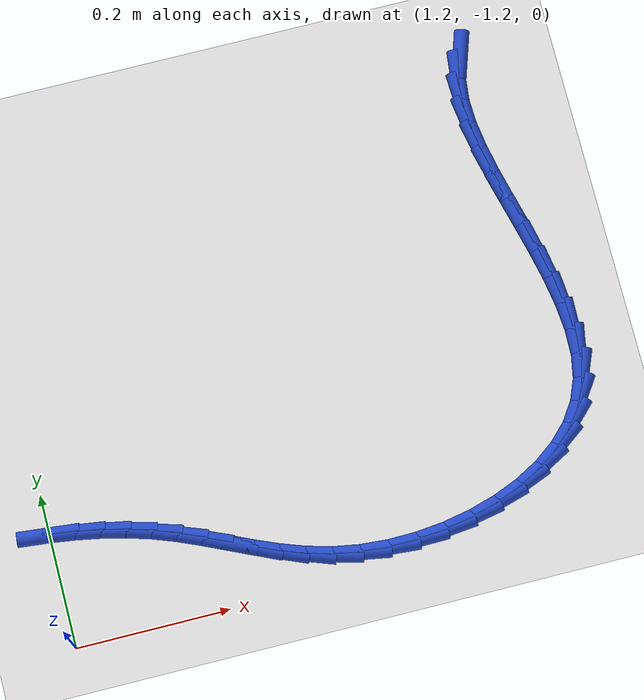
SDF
<sdf version="1.6">
 <world name="default">
  <model name="ground_plane">
   <static>1</static>
   <link name="link">
    <collision name="collision">
     <geometry><plane><normal>0 0 1</normal><size>100 100</size></plane></geometry>
     <surface><friction><ode><mu>100</mu><mu2>50</mu2></ode></friction></surface>
    </collision>
    <visual name="visual">
     <cast_shadows>0</cast_shadows>
     <geometry><plane><normal>0 0 1</normal><size>100 100</size></plane></geometry>
     <material>
      <script><uri>file://media/materials/scripts/gazebo.material</uri><name>Gazebo/WhiteGlow</name></script>
     </material>
    </visual>
   </link>
  </model>
  <model name="line">
   <link name="link_129">
    <pose>1.8632933711608464 -0.575412648130914 0.01 0 1.57 1.2504238579295757</pose>
    <collision name="collision">
     <geometry><cylinder><radius>0.01</radius><length>0.08</length></cylinder></geometry>
    </collision>
    <visual name="visual">
     <material>
      <script><name>Gazebo/Blue</name><uri>file://media/materials/scripts/gazebo.material</uri></script>
     </material>
     <geometry><cylinder><radius>0.01</radius><length>0.08</length></cylinder></geometry>
    </visual>
   </link>
   <link name="link_130">
    <pose>1.8546679496541427 -0.6014082718740382 0.01 0 1.57 1.4628177423279325</pose>
    <collision name="collision">
     <geometry><cylinder><radius>0.01</radius><length>0.08</length></cylinder></geometry>
    </collision>
    <visual name="visual">
     <material>
      <script><name>Gazebo/Blue</name><uri>file://media/materials/scripts/gazebo.material</uri></script>
     </material>
     <geometry><cylinder><radius>0.01</radius><length>0.08</length></cylinder></geometry>
    </visual>
   </link>
   <link name="link_131">
    <pose>1.8514949266762994 -0.6306796461570738 0.01 0 1.57 -1.52931622320781</pose>
    <collision name="collision">
     <geometry><cylinder><radius>0.01</radius><length>0.08</length></cylinder></geometry>
    </collision>
    <visual name="visual">
     <material>
      <script><name>Gazebo/Blue</name><uri>file://media/materials/scripts/gazebo.material</uri></script>
     </material>
     <geometry><cylinder><radius>0.01</radius><length>0.08</length></cylinder></geometry>
    </visual>
   </link>
   <link name="link_132">
    <pose>1.852824706941173 -0.6627195252698033 0.01 0 1.57 -1.429389986927651</pose>
    <collision name="collision">
     <geometry><cylinder><radius>0.01</radius><length>0.08</length></cylinder></geometry>
    </collision>
    <visual name="visual">
     <material>
      <script><name>Gazebo/Blue</name><uri>file://media/materials/scripts/gazebo.material</uri></script>
     </material>
     <geometry><cylinder><radius>0.01</radius><length>0.08</length></cylinder></geometry>
    </visual>
   </link>
   <link name="link_133">
    <pose>1.8577076951626175 -0.6970206635020103 0.01 0 1.57 -1.366062618379595</pose>
    <collision name="collision">
     <geometry><cylinder><radius>0.01</radius><length>0.08</length></cylinder></geometry>
    </collision>
    <visual name="visual">
     <material>
      <script><name>Gazebo/Blue</name><uri>file://media/materials/scripts/gazebo.material</uri></script>
     </material>
     <geometry><cylinder><radius>0.01</radius><length>0.08</length></cylinder></geometry>
    </visual>
   </link>
   <link name="link_134">
    <pose>1.8651942960544887 -0.7330758151434794 0.01 0 1.57 -1.3304873751927069</pose>
    <collision name="collision">
     <geometry><cylinder><radius>0.01</radius><length>0.08</length></cylinder></geometry>
    </collision>
    <visual name="visual">
     <material>
      <script><name>Gazebo/Blue</name><uri>file://media/materials/scripts/gazebo.material</uri></script>
     </material>
     <geometry><cylinder><radius>0.01</radius><length>0.08</length></cylinder></geometry>
    </visual>
   </link>
   <link name="link_135">
    <pose>1.8743349143306423 -0.7703777344839946 0.01 0 1.57 -1.3175546981564903</pose>
    <collision name="collision">
     <geometry><cylinder><radius>0.01</radius><length>0.08</length></cylinder></geometry>
    </collision>
    <visual name="visual">
     <material>
      <script><name>Gazebo/Blue</name><uri>file://media/materials/scripts/gazebo.material</uri></script>
     </material>
     <geometry><cylinder><radius>0.01</radius><length>0.08</length></cylinder></geometry>
    </visual>
   </link>
   <link name="link_136">
    <pose>1.884179954704933 -0.8084191758133379 0.01 0 1.57 -1.325044736934361</pose>
    <collision name="collision">
     <geometry><cylinder><radius>0.01</radius><length>0.08</length></cylinder></geometry>
    </collision>
    <visual name="visual">
     <material>
      <script><name>Gazebo/Blue</name><uri>file://media/materials/scripts/gazebo.material</uri></script>
     </material>
     <geometry><cylinder><radius>0.01</radius><length>0.08</length></cylinder></geometry>
    </visual>
   </link>
   <link name="link_137">
    <pose>1.8937798218912156 -0.8466928934212941 0.01 0 1.57 -1.3531073387764245</pose>
    <collision name="collision">
     <geometry><cylinder><radius>0.01</radius><length>0.08</length></cylinder></geometry>
    </collision>
    <visual name="visual">
     <material>
      <script><name>Gazebo/Blue</name><uri>file://media/materials/scripts/gazebo.material</uri></script>
     </material>
     <geometry><cylinder><radius>0.01</radius><length>0.08</length></cylinder></geometry>
    </visual>
   </link>
   <link name="link_138">
    <pose>1.902184920603346 -0.8846916415976465 0.01 0 1.57 -1.4041322437718786</pose>
    <collision name="collision">
     <geometry><cylinder><radius>0.01</radius><length>0.08</length></cylinder></geometry>
    </collision>
    <visual name="visual">
     <material>
      <script><name>Gazebo/Blue</name><uri>file://media/materials/scripts/gazebo.material</uri></script>
     </material>
     <geometry><cylinder><radius>0.01</radius><length>0.08</length></cylinder></geometry>
    </visual>
   </link>
   <link name="link_139">
    <pose>1.9084456555551792 -0.9219081746321797 0.01 0 1.57 -1.4828789889233411</pose>
    <collision name="collision">
     <geometry><cylinder><radius>0.01</radius><length>0.08</length></cylinder></geometry>
    </collision>
    <visual name="visual">
     <material>
      <script><name>Gazebo/Blue</name><uri>file://media/materials/scripts/gazebo.material</uri></script>
     </material>
     <geometry><cylinder><radius>0.01</radius><length>0.08</length></cylinder></geometry>
    </visual>
   </link>
   <link name="link_140">
    <pose>1.9116124314605707 -0.9578352468146758 0.01 0 1.57 1.545112874044818</pose>
    <collision name="collision">
     <geometry><cylinder><radius>0.01</radius><length>0.08</length></cylinder></geometry>
    </collision>
    <visual name="visual">
     <material>
      <script><name>Gazebo/Blue</name><uri>file://media/materials/scripts/gazebo.material</uri></script>
     </material>
     <geometry><cylinder><radius>0.01</radius><length>0.08</length></cylinder></geometry>
    </visual>
   </link>
   <link name="link_141">
    <pose>1.9107356530333757 -0.9919656124349197 0.01 0 1.57 1.388410204417434</pose>
    <collision name="collision">
     <geometry><cylinder><radius>0.01</radius><length>0.08</length></cylinder></geometry>
    </collision>
    <visual name="visual">
     <material>
      <script><name>Gazebo/Blue</name><uri>file://media/materials/scripts/gazebo.material</uri></script>
     </material>
     <geometry><cylinder><radius>0.01</radius><length>0.08</length></cylinder></geometry>
    </visual>
   </link>
   <link name="link_142">
    <pose>1.9048657249874492 -1.0237920257826942 0.01 0 1.57 1.1860587648093892</pose>
    <collision name="collision">
     <geometry><cylinder><radius>0.01</radius><length>0.08</length></cylinder></geometry>
    </collision>
    <visual name="visual">
     <material>
      <script><name>Gazebo/Blue</name><uri>file://media/materials/scripts/gazebo.material</uri></script>
     </material>
     <geometry><cylinder><radius>0.01</radius><length>0.08</length></cylinder></geometry>
    </visual>
   </link>
   <link name="link_143">
    <pose>1.8931104798734975 -1.052823306038154 0.01 0 1.57 0.9749716603649194</pose>
    <collision name="collision">
     <geometry><cylinder><radius>0.01</radius><length>0.08</length></cylinder></geometry>
    </collision>
    <visual name="visual">
     <material>
      <script><name>Gazebo/Blue</name><uri>file://media/materials/scripts/gazebo.material</uri></script>
     </material>
     <geometry><cylinder><radius>0.01</radius><length>0.08</length></cylinder></geometry>
    </visual>
   </link>
   <link name="link_144">
    <pose>1.8754830489135546 -1.0788215210619505 0.01 0 1.57 0.788980446471819</pose>
    <collision name="collision">
     <geometry><cylinder><radius>0.01</radius><length>0.08</length></cylinder></geometry>
    </collision>
    <visual name="visual">
     <material>
      <script><name>Gazebo/Blue</name><uri>file://media/materials/scripts/gazebo.material</uri></script>
     </material>
     <geometry><cylinder><radius>0.01</radius><length>0.08</length></cylinder></geometry>
    </visual>
   </link>
   <link name="link_145">
    <pose>1.8527177707742726 -1.1017504896280013 0.01 0 1.57 0.6308308227612005</pose>
    <collision name="collision">
     <geometry><cylinder><radius>0.01</radius><length>0.08</length></cylinder></geometry>
    </collision>
    <visual name="visual">
     <material>
      <script><name>Gazebo/Blue</name><uri>file://media/materials/scripts/gazebo.material</uri></script>
     </material>
     <geometry><cylinder><radius>0.01</radius><length>0.08</length></cylinder></geometry>
    </visual>
   </link>
   <link name="link_146">
    <pose>1.8255689961812471 -1.1215796286931015 0.01 0 1.57 0.49710961691294836</pose>
    <collision name="collision">
     <geometry><cylinder><radius>0.01</radius><length>0.08</length></cylinder></geometry>
    </collision>
    <visual name="visual">
     <material>
      <script><name>Gazebo/Blue</name><uri>file://media/materials/scripts/gazebo.material</uri></script>
     </material>
     <geometry><cylinder><radius>0.01</radius><length>0.08</length></cylinder></geometry>
    </visual>
   </link>
   <link name="link_147">
    <pose>1.7947910758600731 -1.1382783552140459 0.01 0 1.57 0.3824682150111354</pose>
    <collision name="collision">
     <geometry><cylinder><radius>0.01</radius><length>0.08</length></cylinder></geometry>
    </collision>
    <visual name="visual">
     <material>
      <script><name>Gazebo/Blue</name><uri>file://media/materials/scripts/gazebo.material</uri></script>
     </material>
     <geometry><cylinder><radius>0.01</radius><length>0.08</length></cylinder></geometry>
    </visual>
   </link>
   <link name="link_148">
    <pose>1.761138360536345 -1.1518160861476296 0.01 0 1.57 0.2815336300978611</pose>
    <collision name="collision">
     <geometry><cylinder><radius>0.01</radius><length>0.08</length></cylinder></geometry>
    </collision>
    <visual name="visual">
     <material>
      <script><name>Gazebo/Blue</name><uri>file://media/materials/scripts/gazebo.material</uri></script>
     </material>
     <geometry><cylinder><radius>0.01</radius><length>0.08</length></cylinder></geometry>
    </visual>
   </link>
   <link name="link_149">
    <pose>1.7253652009356613 -1.162162238450648 0.01 0 1.57 0.18951636399218014</pose>
    <collision name="collision">
     <geometry><cylinder><radius>0.01</radius><length>0.08</length></cylinder></geometry>
    </collision>
    <visual name="visual">
     <material>
      <script><name>Gazebo/Blue</name><uri>file://media/materials/scripts/gazebo.material</uri></script>
     </material>
     <geometry><cylinder><radius>0.01</radius><length>0.08</length></cylinder></geometry>
    </visual>
   </link>
   <link name="link_150">
    <pose>1.6882259477836148 -1.169286229079895 0.01 0 1.57 0.10218965010119697</pose>
    <collision name="collision">
     <geometry><cylinder><radius>0.01</radius><length>0.08</length></cylinder></geometry>
    </collision>
    <visual name="visual">
     <material>
      <script><name>Gazebo/Blue</name><uri>file://media/materials/scripts/gazebo.material</uri></script>
     </material>
     <geometry><cylinder><radius>0.01</radius><length>0.08</length></cylinder></geometry>
    </visual>
   </link>
   <link name="link_151">
    <pose>1.6504749518058008 -1.173157474992166 0.01 0 1.57 0.015631360382414385</pose>
    <collision name="collision">
     <geometry><cylinder><radius>0.01</radius><length>0.08</length></cylinder></geometry>
    </collision>
    <visual name="visual">
     <material>
      <script><name>Gazebo/Blue</name><uri>file://media/materials/scripts/gazebo.material</uri></script>
     </material>
     <geometry><cylinder><radius>0.01</radius><length>0.08</length></cylinder></geometry>
    </visual>
   </link>
   <link name="link_152">
    <pose>1.6128665637278152 -1.1737453931442563 0.01 0 1.57 -0.07411857990275482</pose>
    <collision name="collision">
     <geometry><cylinder><radius>0.01</radius><length>0.08</length></cylinder></geometry>
    </collision>
    <visual name="visual">
     <material>
      <script><name>Gazebo/Blue</name><uri>file://media/materials/scripts/gazebo.material</uri></script>
     </material>
     <geometry><cylinder><radius>0.01</radius><length>0.08</length></cylinder></geometry>
    </visual>
   </link>
   <link name="link_153">
    <pose>1.5761551342752542 -1.1710194004929604 0.01 0 1.57 -0.17117895376255152</pose>
    <collision name="collision">
     <geometry><cylinder><radius>0.01</radius><length>0.08</length></cylinder></geometry>
    </collision>
    <visual name="visual">
     <material>
      <script><name>Gazebo/Blue</name><uri>file://media/materials/scripts/gazebo.material</uri></script>
     </material>
     <geometry><cylinder><radius>0.01</radius><length>0.08</length></cylinder></geometry>
    </visual>
   </link>
   <link name="link_154">
    <pose>1.5410838725154967 -1.1649566047729982 0.01 0 1.57 -0.26766705958619086</pose>
    <collision name="collision">
     <geometry><cylinder><radius>0.01</radius><length>0.08</length></cylinder></geometry>
    </collision>
    <visual name="visual">
     <material>
      <script><name>Gazebo/Blue</name><uri>file://media/materials/scripts/gazebo.material</uri></script>
     </material>
     <geometry><cylinder><radius>0.01</radius><length>0.08</length></cylinder></geometry>
    </visual>
   </link>
   <link name="link_155">
    <pose>1.5079212437488443 -1.1558618161860958 0.01 0 1.57 -0.3453592286152621</pose>
    <collision name="collision">
     <geometry><cylinder><radius>0.01</radius><length>0.08</length></cylinder></geometry>
    </collision>
    <visual name="visual">
     <material>
      <script><name>Gazebo/Blue</name><uri>file://media/materials/scripts/gazebo.material</uri></script>
     </material>
     <geometry><cylinder><radius>0.01</radius><length>0.08</length></cylinder></geometry>
    </visual>
   </link>
   <link name="link_156">
    <pose>1.476293789522837 -1.1444829471124491 0.01 0 1.57 -0.39954521630736023</pose>
    <collision name="collision">
     <geometry><cylinder><radius>0.01</radius><length>0.08</length></cylinder></geometry>
    </collision>
    <visual name="visual">
     <material>
      <script><name>Gazebo/Blue</name><uri>file://media/materials/scripts/gazebo.material</uri></script>
     </material>
     <geometry><cylinder><radius>0.01</radius><length>0.08</length></cylinder></geometry>
    </visual>
   </link>
   <link name="link_157">
    <pose>1.445782516801021 -1.1315993411938026 0.01 0 1.57 -0.42821478773749855</pose>
    <collision name="collision">
     <geometry><cylinder><radius>0.01</radius><length>0.08</length></cylinder></geometry>
    </collision>
    <visual name="visual">
     <material>
      <script><name>Gazebo/Blue</name><uri>file://media/materials/scripts/gazebo.material</uri></script>
     </material>
     <geometry><cylinder><radius>0.01</radius><length>0.08</length></cylinder></geometry>
    </visual>
   </link>
   <link name="link_158">
    <pose>1.415968432546939 -1.1179903420718986 0.01 0 1.57 -0.43025925786401786</pose>
    <collision name="collision">
     <geometry><cylinder><radius>0.01</radius><length>0.08</length></cylinder></geometry>
    </collision>
    <visual name="visual">
     <material>
      <script><name>Gazebo/Blue</name><uri>file://media/materials/scripts/gazebo.material</uri></script>
     </material>
     <geometry><cylinder><radius>0.01</radius><length>0.08</length></cylinder></geometry>
    </visual>
   </link>
   <link name="link_159">
    <pose>1.3864325437241345 -1.1044352933884796 0.01 0 1.57 -0.4049821594097706</pose>
    <collision name="collision">
     <geometry><cylinder><radius>0.01</radius><length>0.08</length></cylinder></geometry>
    </collision>
    <visual name="visual">
     <material>
      <script><name>Gazebo/Blue</name><uri>file://media/materials/scripts/gazebo.material</uri></script>
     </material>
     <geometry><cylinder><radius>0.01</radius><length>0.08</length></cylinder></geometry>
    </visual>
   </link>
   <link name="link_160">
    <pose>1.3567558572961511 -1.0917135387852888 0.01 0 1.57 -0.35257251496381037</pose>
    <collision name="collision">
     <geometry><cylinder><radius>0.01</radius><length>0.08</length></cylinder></geometry>
    </collision>
    <visual name="visual">
     <material>
      <script><name>Gazebo/Blue</name><uri>file://media/materials/scripts/gazebo.material</uri></script>
     </material>
     <geometry><cylinder><radius>0.01</radius><length>0.08</length></cylinder></geometry>
    </visual>
   </link>
   <link name="link_161">
    <pose>1.3265265116027531 -1.0805907558362167 0.01 0 1.57 -0.2883467784258168</pose>
    <collision name="collision">
     <geometry><cylinder><radius>0.01</radius><length>0.08</length></cylinder></geometry>
    </collision>
    <visual name="visual">
     <material>
      <script><name>Gazebo/Blue</name><uri>file://media/materials/scripts/gazebo.material</uri></script>
     </material>
     <geometry><cylinder><radius>0.01</radius><length>0.08</length></cylinder></geometry>
    </visual>
   </link>
   <link name="link_162">
    <pose>1.295556048785743 -1.0714045067803923 0.01 0 1.57 -0.23021875863753774</pose>
    <collision name="collision">
     <geometry><cylinder><radius>0.01</radius><length>0.08</length></cylinder></geometry>
    </collision>
    <visual name="visual">
     <material>
      <script><name>Gazebo/Blue</name><uri>file://media/materials/scripts/gazebo.material</uri></script>
     </material>
     <geometry><cylinder><radius>0.01</radius><length>0.08</length></cylinder></geometry>
    </visual>
   </link>
   <link name="link_163">
    <pose>1.263918432316382 -1.0639894680766504 0.01 0 1.57 -0.17926673027917764</pose>
    <collision name="collision">
     <geometry><cylinder><radius>0.01</radius><length>0.08</length></cylinder></geometry>
    </collision>
    <visual name="visual">
     <material>
      <script><name>Gazebo/Blue</name><uri>file://media/materials/scripts/gazebo.material</uri></script>
     </material>
     <geometry><cylinder><radius>0.01</radius><length>0.08</length></cylinder></geometry>
    </visual>
   </link>
   <link name="link_164">
    <pose>1.2317026239877131 -1.0581515744547614 0.01 0 1.57 -0.13537869632827965</pose>
    <collision name="collision">
     <geometry><cylinder><radius>0.01</radius><length>0.08</length></cylinder></geometry>
    </collision>
    <visual name="visual">
     <material>
      <script><name>Gazebo/Blue</name><uri>file://media/materials/scripts/gazebo.material</uri></script>
     </material>
     <geometry><cylinder><radius>0.01</radius><length>0.08</length></cylinder></geometry>
    </visual>
   </link>
   <link name="link_165">
    <pose>1.1989975855927784 -1.0536967606444967 0.01 0 1.57 -0.0983306672378684</pose>
    <collision name="collision">
     <geometry><cylinder><radius>0.01</radius><length>0.08</length></cylinder></geometry>
    </collision>
    <visual name="visual">
     <material>
      <script><name>Gazebo/Blue</name><uri>file://media/materials/scripts/gazebo.material</uri></script>
     </material>
     <geometry><cylinder><radius>0.01</radius><length>0.08</length></cylinder></geometry>
    </visual>
   </link>
  </model>
 </world>
</sdf>
